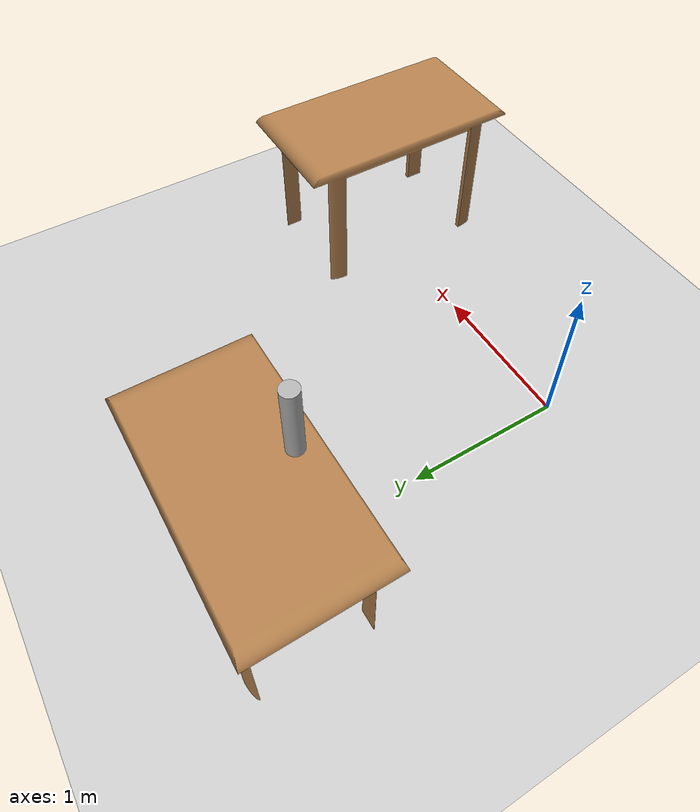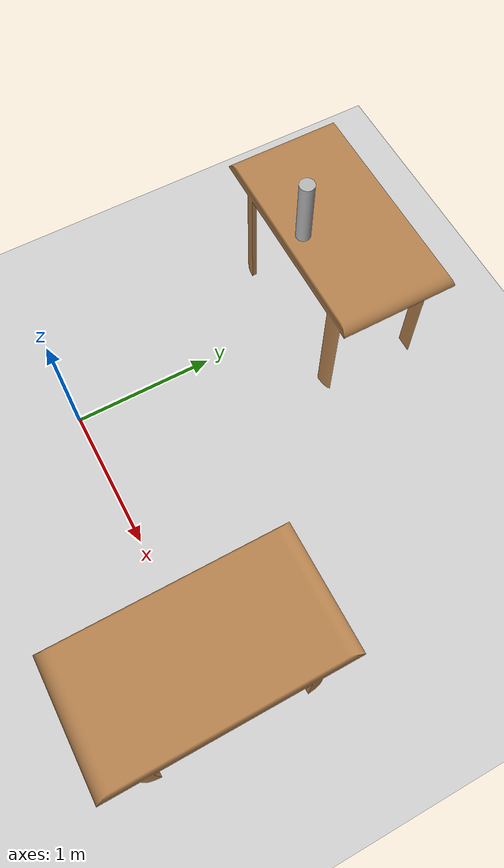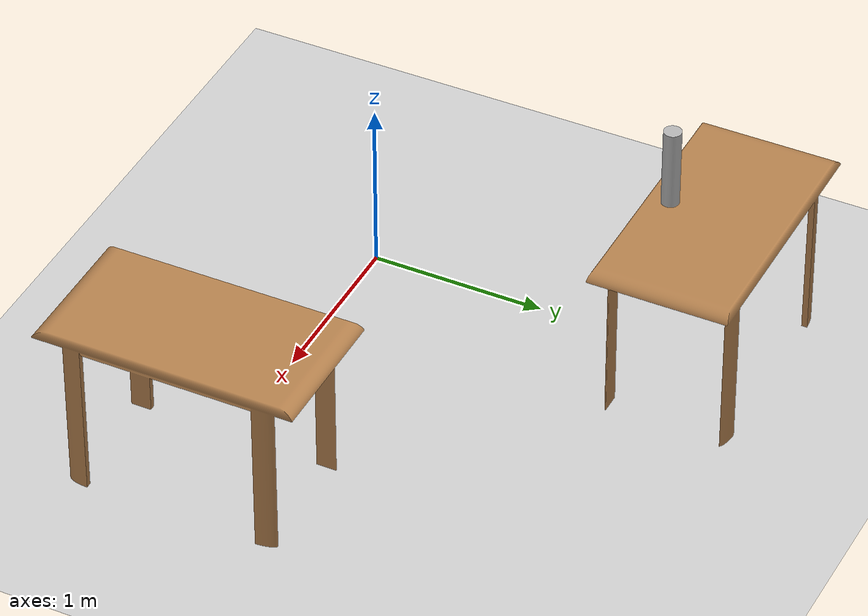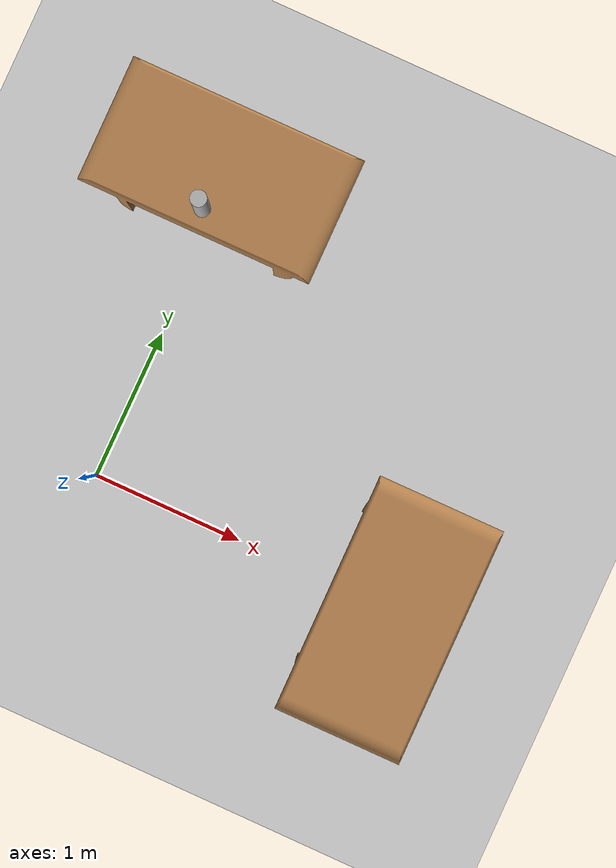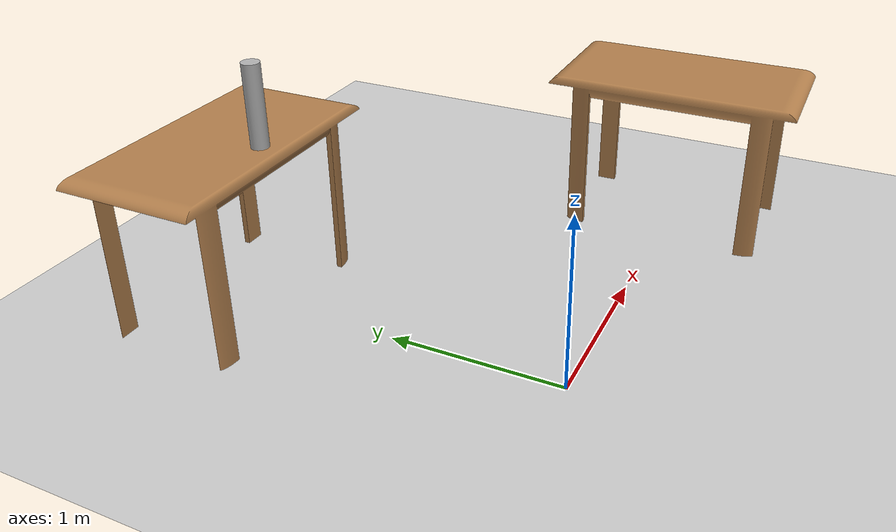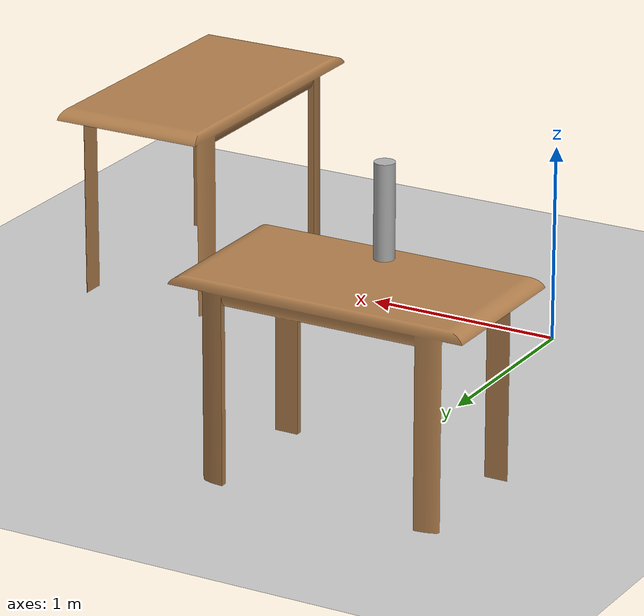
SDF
<sdf version="1.7">
 <world name="default">
  <plugin name="gazebo_link_attacher" filename="libgazebo_link_attacher.so"/>
  <plugin name="gazebo_ros_state" filename="libgazebo_ros_state.so">
   <ros><namespace>/gazebo</namespace></ros>
   <update_rate>10.0</update_rate>
  </plugin>
  <light name="sun" type="directional">
   <pose>0 0 10 0 -0 0</pose>
   <diffuse>0.8 0.8 0.8 1</diffuse>
   <specular>0.2 0.2 0.2 1</specular>
   <attenuation>
    <range>1000</range>
    <constant>0.9</constant>
    <linear>0.01</linear>
    <quadratic>0.001</quadratic>
   </attenuation>
   <direction>-0.5 0.1 -0.9</direction>
   <spot><inner_angle>0</inner_angle><outer_angle>0</outer_angle><falloff>0</falloff></spot>
  </light>
  <model name="ground_plane">
   <static>1</static>
   <link name="link">
    <collision name="collision">
     <geometry><plane><normal>0 0 1</normal><size>100 100</size></plane></geometry>
     <surface><friction><ode><mu>100</mu><mu2>50</mu2></ode></friction></surface>
    </collision>
    <visual name="visual">
     <cast_shadows>0</cast_shadows>
     <geometry><plane><normal>0 0 1</normal><size>100 100</size></plane></geometry>
     <material>
      <script><uri>file://media/materials/scripts/gazebo.material</uri><name>Gazebo/Grey</name></script>
     </material>
    </visual>
   </link>
  </model>
  <gravity>0 0 -9.8</gravity>
  <magnetic_field>6e-06 2.3e-05 -4.2e-05</magnetic_field>
  <atmosphere type="adiabatic"/>
  <physics type="ode">
   <max_step_size>0.001</max_step_size>
   <real_time_factor>1</real_time_factor>
   <real_time_update_rate>1000</real_time_update_rate>
  </physics>
  <scene><ambient>0.4 0.4 0.4 1</ambient><background>0.7 0.7 0.7 1</background><shadows>1</shadows></scene>
  <audio><device>default</device></audio>
  <spherical_coordinates>
   <surface_model>EARTH_WGS84</surface_model>
   <latitude_deg>0</latitude_deg>
   <longitude_deg>0</longitude_deg>
   <elevation>0</elevation>
   <heading_deg>0</heading_deg>
  </spherical_coordinates>
  <model name="table">
   <static>1</static>
   <link name="link">
    <inertial>
     <pose>0 0 0.826327 0 -0 0</pose>
     <mass>98.3782</mass>
     <inertia><ixx>9.87075</ixx><ixy>0</ixy><ixz>0</ixz><iyy>25.9814</iyy><iyz>0</iyz><izz>23.6771</izz></inertia>
    </inertial>
    <visual name="visual">
     <geometry><mesh><uri>model://table/table.dae</uri><scale>1 1 1</scale></mesh></geometry>
     <material>
      <diffuse>1 1 1 1</diffuse>
      <script><uri>file://media/materials/scripts/gazebo.material</uri><name>Gazebo/Wood</name></script>
     </material>
    </visual>
    <collision name="tabletop">
     <pose>0 0 0.826327 0 -0 0</pose>
     <geometry><box><size>1.48542 0.788914 0.28</size></box></geometry>
     <surface><friction><ode><mu>0.6</mu><mu2>0.6</mu2></ode></friction></surface>
    </collision>
   </link>
   <pose>0 2 0 0 -0 0</pose>
  </model>
  <model name="rod">
   <static>0</static>
   <link name="link">
    <inertial>
     <pose>0 0 0.25 0 -0 0</pose>
     <mass>4.90086</mass>
     <inertia>
      <ixx>0.105159</ixx>
      <ixy>0</ixy>
      <ixz>0</ixz>
      <iyy>0.105159</iyy>
      <iyz>0</iyz>
      <izz>0.00611624</izz>
     </inertia>
    </inertial>
    <visual name="visual">
     <geometry><mesh><uri>model://rod/rod.dae</uri><scale>1 1 1</scale></mesh></geometry>
     <material>
      <lighting>1</lighting>
      <shader type="pixel"><normal_map>__default__</normal_map></shader>
      <ambient>0 0 1 1</ambient>
      <diffuse>0.7 0.7 0.7 1</diffuse>
      <specular>0.01 0.01 0.01 1</specular>
      <emissive>0 0 0 1</emissive>
     </material>
    </visual>
    <collision name="collision">
     <pose>0 0 0.25 0 -0 0</pose>
     <geometry><cylinder><radius>0.05</radius><length>0.5</length></cylinder></geometry>
     <surface>
      <friction>
       <ode><mu>1</mu><mu2>1</mu2><fdir1>0 0 0</fdir1><slip1>0</slip1><slip2>0</slip2></ode>
       <torsional>
        <coefficient>1</coefficient>
        <patch_radius>0</patch_radius>
        <surface_radius>0</surface_radius>
        <use_patch_radius>1</use_patch_radius>
        <ode><slip>0</slip></ode>
       </torsional>
      </friction>
      <bounce><restitution_coefficient>0</restitution_coefficient><threshold>1e+06</threshold></bounce>
      <contact>
       <collide_without_contact>0</collide_without_contact>
       <collide_without_contact_bitmask>1</collide_without_contact_bitmask>
       <collide_bitmask>1</collide_bitmask>
       <ode>
        <soft_cfm>0</soft_cfm>
        <soft_erp>0.2</soft_erp>
        <kp>1e+13</kp>
        <kd>1</kd>
        <max_vel>0.01</max_vel>
        <min_depth>0</min_depth>
       </ode>
       <bullet>
        <split_impulse>1</split_impulse>
        <split_impulse_penetration_threshold>-0.01</split_impulse_penetration_threshold>
        <soft_cfm>0</soft_cfm>
        <soft_erp>0.2</soft_erp>
        <kp>1e+13</kp>
        <kd>1</kd>
       </bullet>
      </contact>
     </surface>
    </collision>
   </link>
   <pose>1e-06 1.74 0.966333 0.000102 -6.9e-05 -2.4e-05</pose>
  </model>
  <model name="table_0">
   <static>1</static>
   <link name="link">
    <inertial>
     <pose>0 0 0.826327 0 -0 0</pose>
     <mass>98.3782</mass>
     <inertia><ixx>9.87075</ixx><ixy>0</ixy><ixz>0</ixz><iyy>25.9814</iyy><iyz>0</iyz><izz>23.6771</izz></inertia>
    </inertial>
    <visual name="visual">
     <geometry><mesh><uri>model://table/table.dae</uri><scale>1 1 1</scale></mesh></geometry>
     <material>
      <diffuse>1 1 1 1</diffuse>
      <script><uri>file://media/materials/scripts/gazebo.material</uri><name>Gazebo/Wood</name></script>
     </material>
    </visual>
    <collision name="tabletop">
     <pose>0 0 0.826327 0 -0 0</pose>
     <geometry><box><size>1.48542 0.788914 0.28</size></box></geometry>
     <surface><friction><ode><mu>0.6</mu><mu2>0.6</mu2></ode></friction></surface>
    </collision>
   </link>
   <pose>2 0 0 0 0 -1.56965</pose>
  </model>
 </world>
</sdf>
